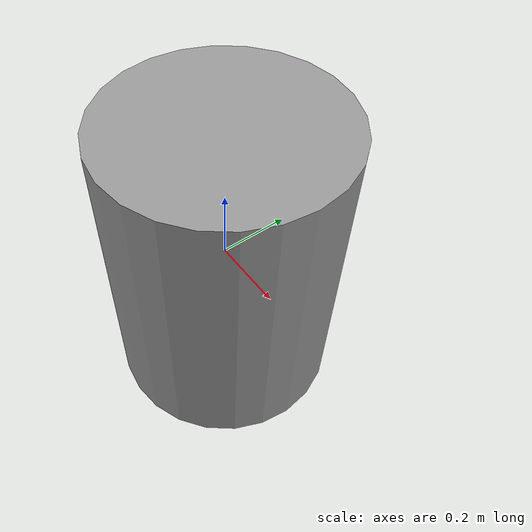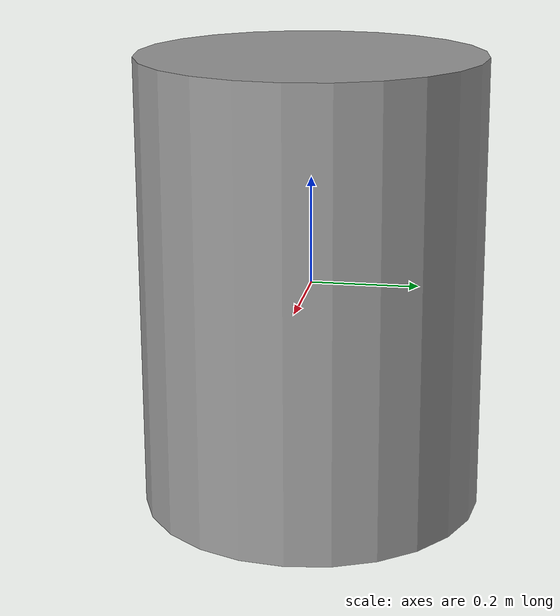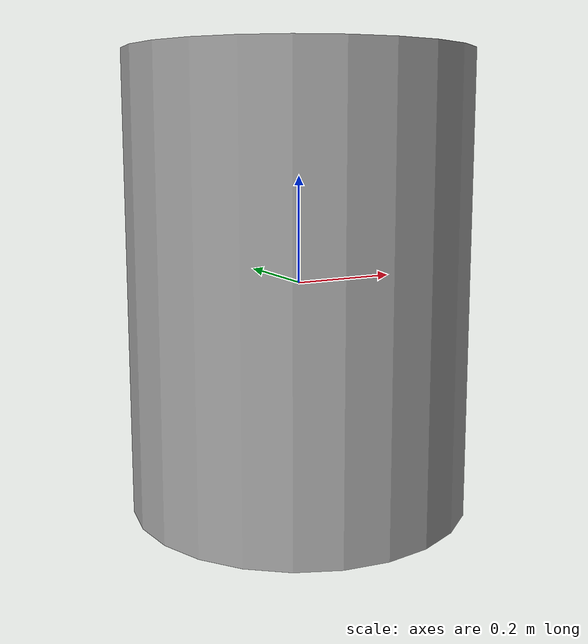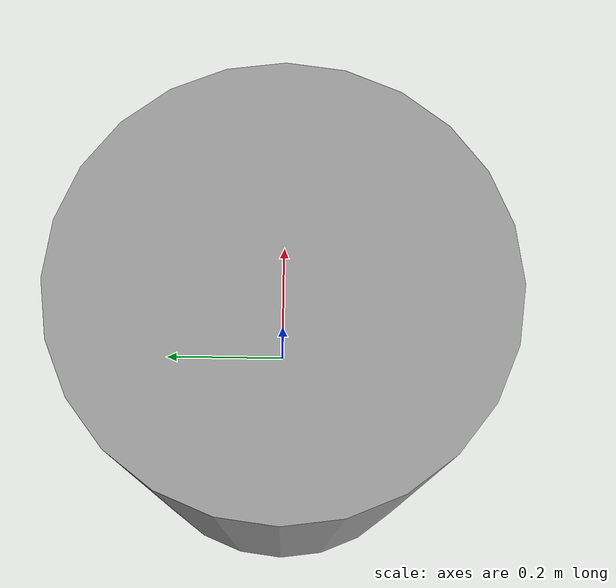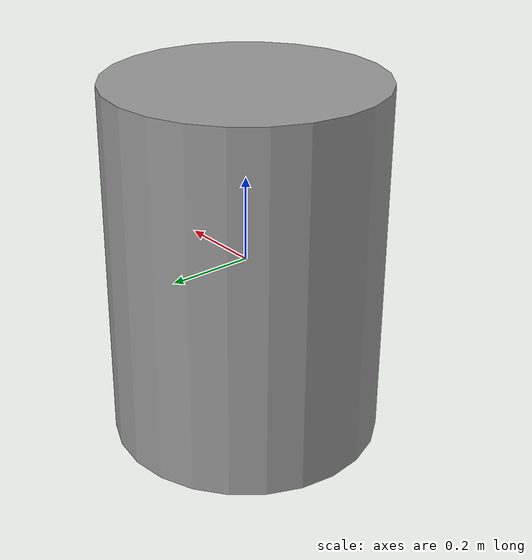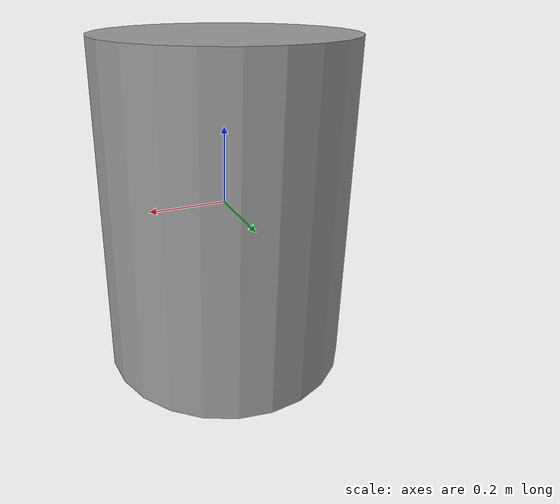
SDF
<?xml version='1.0'?>
<sdf version='1.6'>
  <model name='dynamic_obstacle_1'>
    <link name='base_link'>
      <inertial>
        <mass>0.104241</mass>
        <inertia>
          <ixx>0.0273737</ixx>
          <ixy>0</ixy>
          <ixz>0</ixz>
          <iyy>0.0273737</iyy>
          <iyz>0</iyz>
          <izz>0.0156413</izz>
        </inertia>
        <pose frame=''>0 0 0 0 -0 0</pose>
      </inertial>
      <pose frame=''>-0 3e-06 0 0 -0 0</pose>
      <visual name='visual'>
        <pose frame=''>0 0 0 0 -0 0</pose>
        <geometry>
          <cylinder>
            <radius>0.318908</radius>
            <length>0.85</length>
          </cylinder>
        </geometry>
        <material>
          <lighting>1</lighting>
          <script>
            <uri>file://media/materials/scripts/gazebo.material</uri>
            <name>Gazebo/Grey</name>
          </script>
        </material>
        <transparency>0</transparency>
        <cast_shadows>1</cast_shadows>
      </visual>
      <collision name='collision'>
        <laser_retro>0</laser_retro>
        <max_contacts>10</max_contacts>
        <pose frame=''>0 0 0 0 -0 0</pose>
        <geometry>
          <cylinder>
            <radius>0.318908</radius>
            <length>0.85</length>
          </cylinder>
        </geometry>
        <surface>
          <friction>
            <ode>
              <mu>1</mu>
              <mu2>1</mu2>
              <fdir1>0 0 0</fdir1>
              <slip1>0</slip1>
              <slip2>0</slip2>
            </ode>
            <torsional>
              <coefficient>1</coefficient>
              <patch_radius>0</patch_radius>
              <surface_radius>0</surface_radius>
              <use_patch_radius>1</use_patch_radius>
              <ode>
                <slip>0</slip>
              </ode>
            </torsional>
          </friction>
          <bounce>
            <restitution_coefficient>0</restitution_coefficient>
            <threshold>1e+06</threshold>
          </bounce>
          <contact>
            <collide_without_contact>0</collide_without_contact>
            <collide_without_contact_bitmask>1</collide_without_contact_bitmask>
            <collide_bitmask>1</collide_bitmask>
            <ode>
              <soft_cfm>0</soft_cfm>
              <soft_erp>0.2</soft_erp>
              <kp>1e+13</kp>
              <kd>1</kd>
              <max_vel>0.01</max_vel>
              <min_depth>0</min_depth>
            </ode>
            <bullet>
              <split_impulse>1</split_impulse>
              <split_impulse_penetration_threshold>-0.01</split_impulse_penetration_threshold>
              <soft_cfm>0</soft_cfm>
              <soft_erp>0.2</soft_erp>
              <kp>1e+13</kp>
              <kd>1</kd>
            </bullet>
          </contact>
        </surface>
      </collision>
    </link>
    <static>0</static>
    <allow_auto_disable>1</allow_auto_disable>

    <plugin name="object_controller" filename="libgazebo_ros_planar_move.so">
      <robotNamespace>dynamic_obstacle_1</robotNamespace>
      <commandTopic>cmd_vel</commandTopic>
      <odometryTopic>odom</odometryTopic>
      <odometryFrame>odom</odometryFrame>
      <odometryRate>20.0</odometryRate>
      <robotBaseFrame>base_link</robotBaseFrame>
    </plugin>

  </model>
</sdf>
